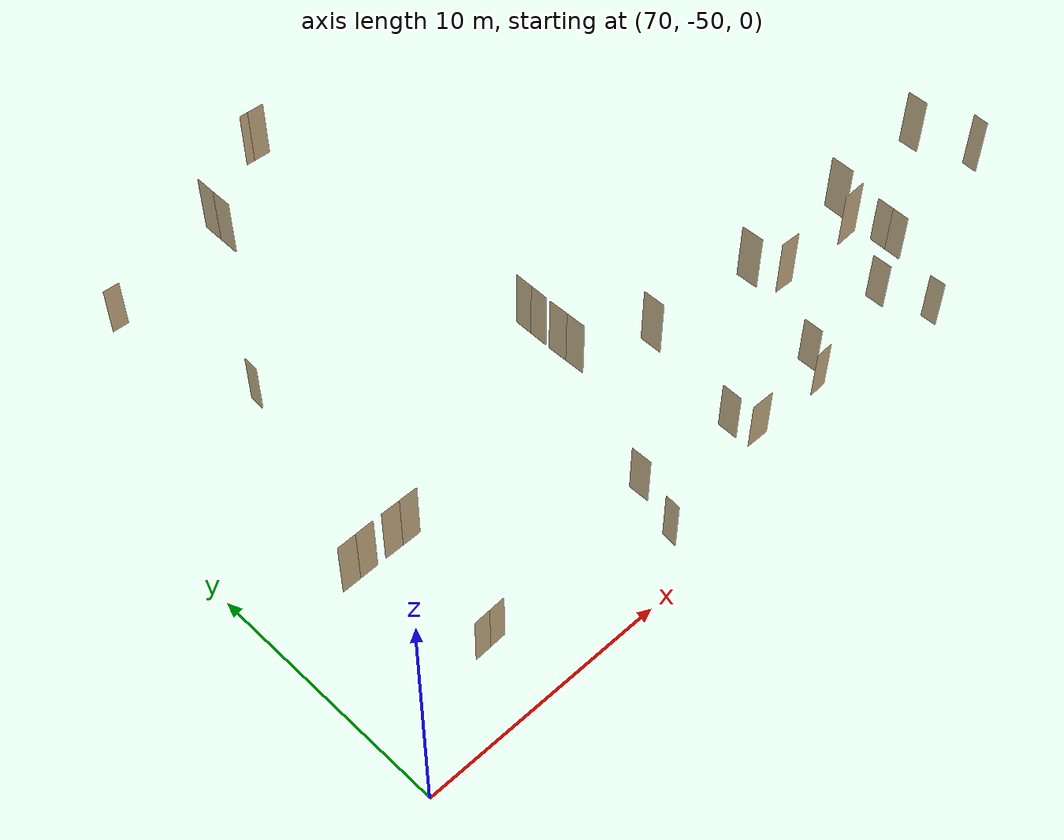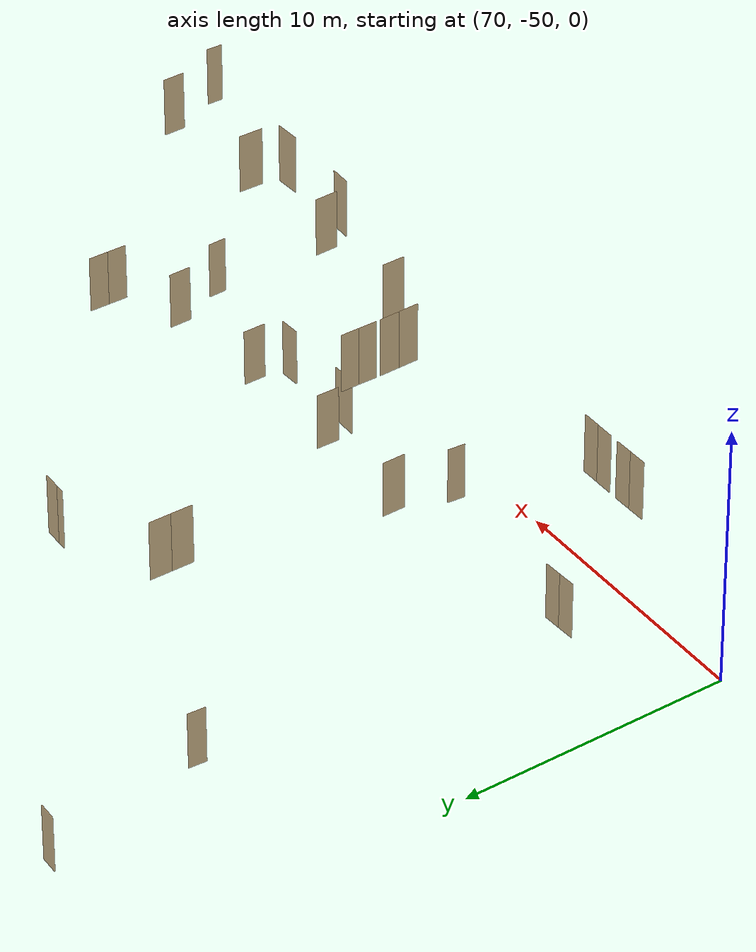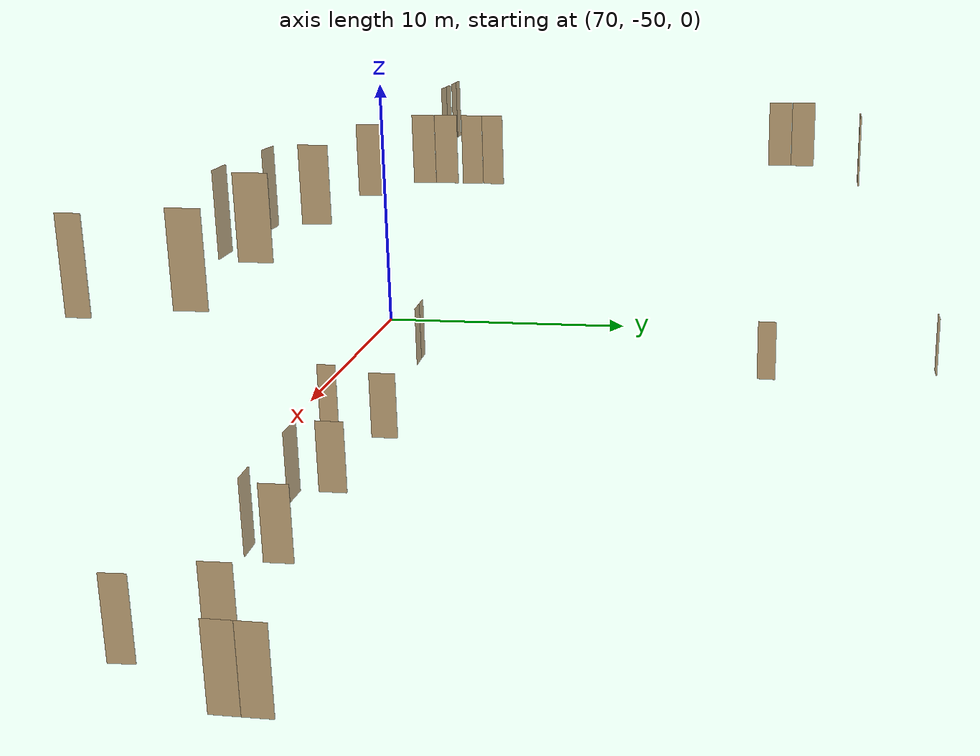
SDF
<sdf version="1.7">
 <world name="sim_world">
  <model name="TD0004SD">
   <pose>74.79835750045166 -27.734196090156722 0.0 0 0 3.0880747045317474</pose>
   <link name="right">
    <pose>0 0 1.11 0 0 0</pose>
    <visual name="right_visual">
     <geometry><box><size>0.680225894375982 0.03 2.2</size></box></geometry>
     <material>
      <ambient>0.5 0.25 0 0.6</ambient>
      <diffuse>0.5 0.25 0 0.6</diffuse>
      <pbr><metal><metalness>0.0</metalness></metal></pbr>
     </material>
    </visual>
    <collision name="right_collision">
     <geometry><box><size>0.680225894375982 0.03 2.2</size></box></geometry>
     <surface><contact><collide_bitmask>0x02</collide_bitmask></contact></surface>
    </collision>
    <inertial>
     <mass>50.0</mass>
     <inertia><ixx>20.17041666666667</ixx><iyy>22.09461361408169</iyy><izz>1.9316969474150196</izz></inertia>
    </inertial>
   </link>
   <joint name="right_joint" type="revolute">
    <parent>world</parent>
    <child>right</child>
    <axis><xyz>0 0 1</xyz><limit><lower>0</lower><upper>1.57</upper></limit></axis>
    <pose>0.345112947187991 0 0 0 0 0</pose>
   </joint>
   <plugin name="register_component" filename="libregister_component.so">
    <component name="Door">
     <v_max_door>0.5</v_max_door>
     <a_max_door>0.3</a_max_door>
     <a_nom_door>0.15</a_nom_door>
     <dx_min_door>0.01</dx_min_door>
     <f_max_door>500.0</f_max_door>
     <ros_interface>true</ros_interface>
     <door name="TD0004SD" type="SwingDoor" left_joint_name="empty_joint" right_joint_name="right_joint"/>
    </component>
   </plugin>
  </model>
  <model name="TD0003SC">
   <pose>76.13918153391711 -34.07165654204597 0.0 0 0 -1.631321297984006</pose>
   <link name="right">
    <pose>0 0 1.11 0 0 0</pose>
    <visual name="right_visual">
     <geometry><box><size>0.6642221204166918 0.03 2.2</size></box></geometry>
     <material>
      <ambient>0.5 0.25 0 0.6</ambient>
      <diffuse>0.5 0.25 0 0.6</diffuse>
      <pbr><metal><metalness>0.0</metalness></metal></pbr>
     </material>
    </visual>
    <collision name="right_collision">
     <geometry><box><size>0.6642221204166918 0.03 2.2</size></box></geometry>
     <surface><contact><collide_bitmask>0x02</collide_bitmask></contact></surface>
    </collision>
    <inertial>
     <mass>50.0</mass>
     <inertia><ixx>20.17041666666667</ixx><iyy>22.004962605211865</iyy><izz>1.8420459385451928</izz></inertia>
    </inertial>
   </link>
   <joint name="right_joint" type="revolute">
    <parent>world</parent>
    <child>right</child>
    <axis><xyz>0 0 -1</xyz><limit><lower>0</lower><upper>1.57</upper></limit></axis>
    <pose>0.3371110602083459 0 0 0 0 0</pose>
   </joint>
   <plugin name="register_component" filename="libregister_component.so">
    <component name="Door">
     <v_max_door>0.5</v_max_door>
     <a_max_door>0.3</a_max_door>
     <a_nom_door>0.15</a_nom_door>
     <dx_min_door>0.01</dx_min_door>
     <f_max_door>500.0</f_max_door>
     <ros_interface>true</ros_interface>
     <door name="TD0003SC" type="SwingDoor" left_joint_name="empty_joint" right_joint_name="right_joint"/>
    </component>
   </plugin>
  </model>
  <model name="TD0001EC2">
   <pose>75.12317994179705 -47.33942553554783 0.0 0 0 0.04271923748868774</pose>
   <link name="right">
    <pose>0.3341276760392261 0 1.11 0 0 0</pose>
    <visual name="right_visual">
     <geometry><box><size>0.6582553520784522 0.03 2.2</size></box></geometry>
     <material>
      <ambient>0.5 0.25 0 0.6</ambient>
      <diffuse>0.5 0.25 0 0.6</diffuse>
      <pbr><metal><metalness>0.0</metalness></metal></pbr>
     </material>
    </visual>
    <collision name="right_collision">
     <geometry><box><size>0.6582553520784522 0.03 2.2</size></box></geometry>
     <surface><contact><collide_bitmask>0x02</collide_bitmask></contact></surface>
    </collision>
    <inertial>
     <mass>50.0</mass>
     <inertia><ixx>20.17041666666667</ixx><iyy>21.972083785583035</iyy><izz>1.809167118916363</izz></inertia>
    </inertial>
   </link>
   <joint name="right_joint" type="revolute">
    <parent>world</parent>
    <child>right</child>
    <axis><xyz>0 0 -1</xyz><limit><lower>0</lower><upper>1.57</upper></limit></axis>
    <pose>0.3341276760392261 0 0 0 0 0</pose>
   </joint>
   <link name="left">
    <pose>-0.3341276760392261 0 1.11 0 0 0</pose>
    <visual name="left_visual">
     <geometry><box><size>0.6582553520784522 0.03 2.2</size></box></geometry>
     <material>
      <ambient>0.5 0.25 0 0.6</ambient>
      <diffuse>0.5 0.25 0 0.6</diffuse>
      <pbr><metal><metalness>0.0</metalness></metal></pbr>
     </material>
    </visual>
    <collision name="left_collision">
     <geometry><box><size>0.6582553520784522 0.03 2.2</size></box></geometry>
     <surface><contact><collide_bitmask>0x02</collide_bitmask></contact></surface>
    </collision>
    <inertial>
     <mass>50.0</mass>
     <inertia><ixx>20.17041666666667</ixx><iyy>21.972083785583035</iyy><izz>1.809167118916363</izz></inertia>
    </inertial>
   </link>
   <joint name="left_joint" type="revolute">
    <parent>world</parent>
    <child>left</child>
    <axis><xyz>0 0 -1</xyz><limit><lower>-1.57</lower><upper>0</upper></limit></axis>
    <pose>-0.3341276760392261 0 0 0 0 0</pose>
   </joint>
   <plugin name="register_component" filename="libregister_component.so">
    <component name="Door">
     <v_max_door>0.5</v_max_door>
     <a_max_door>0.3</a_max_door>
     <a_nom_door>0.15</a_nom_door>
     <dx_min_door>0.01</dx_min_door>
     <f_max_door>500.0</f_max_door>
     <ros_interface>true</ros_interface>
     <door name="TD0001EC2" type="DoubleSwingDoor" left_joint_name="left_joint" right_joint_name="right_joint"/>
    </component>
   </plugin>
  </model>
  <model name="bano012">
   <pose>82.44700350917586 -48.49807562310532 0.0 0 0 1.470619011720645</pose>
   <link name="right">
    <pose>0 0 1.11 0 0 0</pose>
    <visual name="right_visual">
     <geometry><box><size>0.6442041280268124 0.03 2.2</size></box></geometry>
     <material>
      <ambient>0.5 0.25 0 0.6</ambient>
      <diffuse>0.5 0.25 0 0.6</diffuse>
      <pbr><metal><metalness>0.0</metalness></metal></pbr>
     </material>
    </visual>
    <collision name="right_collision">
     <geometry><box><size>0.6442041280268124 0.03 2.2</size></box></geometry>
     <surface><contact><collide_bitmask>0x02</collide_bitmask></contact></surface>
    </collision>
    <inertial>
     <mass>50.0</mass>
     <inertia><ixx>20.17041666666667</ixx><iyy>21.895828994028278</iyy><izz>1.732912327361607</izz></inertia>
    </inertial>
   </link>
   <joint name="right_joint" type="revolute">
    <parent>world</parent>
    <child>right</child>
    <axis><xyz>0 0 -1</xyz><limit><lower>0</lower><upper>1.57</upper></limit></axis>
    <pose>0.3271020640134062 0 0 0 0 0</pose>
   </joint>
   <plugin name="register_component" filename="libregister_component.so">
    <component name="Door">
     <v_max_door>0.5</v_max_door>
     <a_max_door>0.3</a_max_door>
     <a_nom_door>0.15</a_nom_door>
     <dx_min_door>0.01</dx_min_door>
     <f_max_door>500.0</f_max_door>
     <ros_interface>true</ros_interface>
     <door name="bano012" type="SwingDoor" left_joint_name="empty_joint" right_joint_name="right_joint"/>
    </component>
   </plugin>
  </model>
  <model name="bano011">
   <pose>83.10448165831423 -46.433011116580694 0.0 0 0 1.5813146373530425</pose>
   <link name="right">
    <pose>0 0 1.11 0 0 0</pose>
    <visual name="right_visual">
     <geometry><box><size>0.8585081539588288 0.03 2.2</size></box></geometry>
     <material>
      <ambient>0.5 0.25 0 0.6</ambient>
      <diffuse>0.5 0.25 0 0.6</diffuse>
      <pbr><metal><metalness>0.0</metalness></metal></pbr>
     </material>
    </visual>
    <collision name="right_collision">
     <geometry><box><size>0.8585081539588288 0.03 2.2</size></box></geometry>
     <surface><contact><collide_bitmask>0x02</collide_bitmask></contact></surface>
    </collision>
    <inertial>
     <mass>50.0</mass>
     <inertia><ixx>20.17041666666667</ixx><iyy>23.237651043390823</iyy><izz>3.074734376724151</izz></inertia>
    </inertial>
   </link>
   <joint name="right_joint" type="revolute">
    <parent>world</parent>
    <child>right</child>
    <axis><xyz>0 0 -1</xyz><limit><lower>0</lower><upper>1.57</upper></limit></axis>
    <pose>0.4342540769794144 0 0 0 0 0</pose>
   </joint>
   <plugin name="register_component" filename="libregister_component.so">
    <component name="Door">
     <v_max_door>0.5</v_max_door>
     <a_max_door>0.3</a_max_door>
     <a_nom_door>0.15</a_nom_door>
     <dx_min_door>0.01</dx_min_door>
     <f_max_door>500.0</f_max_door>
     <ros_interface>true</ros_interface>
     <door name="bano011" type="SwingDoor" left_joint_name="empty_joint" right_joint_name="right_joint"/>
    </component>
   </plugin>
  </model>
  <model name="TD0009CW">
   <pose>87.36086317499587 -46.727566624388615 0.0 0 0 1.548810095529099</pose>
   <link name="right">
    <pose>0 0 1.11 0 0 0</pose>
    <visual name="right_visual">
     <geometry><box><size>0.8506552947807262 0.03 2.2</size></box></geometry>
     <material>
      <ambient>0.5 0.25 0 0.6</ambient>
      <diffuse>0.5 0.25 0 0.6</diffuse>
      <pbr><metal><metalness>0.0</metalness></metal></pbr>
     </material>
    </visual>
    <collision name="right_collision">
     <geometry><box><size>0.8506552947807262 0.03 2.2</size></box></geometry>
     <surface><contact><collide_bitmask>0x02</collide_bitmask></contact></surface>
    </collision>
    <inertial>
     <mass>50.0</mass>
     <inertia><ixx>20.17041666666667</ixx><iyy>23.181726793910357</iyy><izz>3.0188101272436842</izz></inertia>
    </inertial>
   </link>
   <joint name="right_joint" type="revolute">
    <parent>world</parent>
    <child>right</child>
    <axis><xyz>0 0 -1</xyz><limit><lower>0</lower><upper>1.57</upper></limit></axis>
    <pose>0.4303276473903631 0 0 0 0 0</pose>
   </joint>
   <plugin name="register_component" filename="libregister_component.so">
    <component name="Door">
     <v_max_door>0.5</v_max_door>
     <a_max_door>0.3</a_max_door>
     <a_nom_door>0.15</a_nom_door>
     <dx_min_door>0.01</dx_min_door>
     <f_max_door>500.0</f_max_door>
     <ros_interface>true</ros_interface>
     <door name="TD0009CW" type="SwingDoor" left_joint_name="empty_joint" right_joint_name="right_joint"/>
    </component>
   </plugin>
  </model>
  <model name="bano015">
   <pose>87.85361827983951 -47.72009086205543 0.0 0 0 3.131120733187098</pose>
   <link name="right">
    <pose>0 0 1.11 0 0 0</pose>
    <visual name="right_visual">
     <geometry><box><size>0.9523774060063468 0.03 2.2</size></box></geometry>
     <material>
      <ambient>0.5 0.25 0 0.6</ambient>
      <diffuse>0.5 0.25 0 0.6</diffuse>
      <pbr><metal><metalness>0.0</metalness></metal></pbr>
     </material>
    </visual>
    <collision name="right_collision">
     <geometry><box><size>0.9523774060063468 0.03 2.2</size></box></geometry>
     <surface><contact><collide_bitmask>0x02</collide_bitmask></contact></surface>
    </collision>
    <inertial>
     <mass>50.0</mass>
     <inertia><ixx>20.17041666666667</ixx><iyy>23.945928014464076</iyy><izz>3.7830113477974083</izz></inertia>
    </inertial>
   </link>
   <joint name="right_joint" type="revolute">
    <parent>world</parent>
    <child>right</child>
    <axis><xyz>0 0 -1</xyz><limit><lower>0</lower><upper>1.57</upper></limit></axis>
    <pose>0.4811887030031734 0 0 0 0 0</pose>
   </joint>
   <plugin name="register_component" filename="libregister_component.so">
    <component name="Door">
     <v_max_door>0.5</v_max_door>
     <a_max_door>0.3</a_max_door>
     <a_nom_door>0.15</a_nom_door>
     <dx_min_door>0.01</dx_min_door>
     <f_max_door>500.0</f_max_door>
     <ros_interface>true</ros_interface>
     <door name="bano015" type="SwingDoor" left_joint_name="empty_joint" right_joint_name="right_joint"/>
    </component>
   </plugin>
  </model>
  <model name="bano016">
   <pose>91.10995652086022 -47.73456781580528 0.0 0 0 0.0493386622574908</pose>
   <link name="right">
    <pose>0 0 1.11 0 0 0</pose>
    <visual name="right_visual">
     <geometry><box><size>0.7568425849847848 0.03 2.2</size></box></geometry>
     <material>
      <ambient>0.5 0.25 0 0.6</ambient>
      <diffuse>0.5 0.25 0 0.6</diffuse>
      <pbr><metal><metalness>0.0</metalness></metal></pbr>
     </material>
    </visual>
    <collision name="right_collision">
     <geometry><box><size>0.7568425849847848 0.03 2.2</size></box></geometry>
     <surface><contact><collide_bitmask>0x02</collide_bitmask></contact></surface>
    </collision>
    <inertial>
     <mass>50.0</mass>
     <inertia><ixx>20.17041666666667</ixx><iyy>22.553377910193554</iyy><izz>2.3904612435268806</izz></inertia>
    </inertial>
   </link>
   <joint name="right_joint" type="revolute">
    <parent>world</parent>
    <child>right</child>
    <axis><xyz>0 0 1</xyz><limit><lower>0</lower><upper>1.57</upper></limit></axis>
    <pose>0.38342129249239243 0 0 0 0 0</pose>
   </joint>
   <plugin name="register_component" filename="libregister_component.so">
    <component name="Door">
     <v_max_door>0.5</v_max_door>
     <a_max_door>0.3</a_max_door>
     <a_nom_door>0.15</a_nom_door>
     <dx_min_door>0.01</dx_min_door>
     <f_max_door>500.0</f_max_door>
     <ros_interface>true</ros_interface>
     <door name="bano016" type="SwingDoor" left_joint_name="empty_joint" right_joint_name="right_joint"/>
    </component>
   </plugin>
  </model>
  <model name="TD0010CW">
   <pose>91.71982905929562 -46.703932155708635 0.0 0 0 1.5707963267948966</pose>
   <link name="right">
    <pose>0 0 1.11 0 0 0</pose>
    <visual name="right_visual">
     <geometry><box><size>0.8220769448283869 0.03 2.2</size></box></geometry>
     <material>
      <ambient>0.5 0.25 0 0.6</ambient>
      <diffuse>0.5 0.25 0 0.6</diffuse>
      <pbr><metal><metalness>0.0</metalness></metal></pbr>
     </material>
    </visual>
    <collision name="right_collision">
     <geometry><box><size>0.8220769448283869 0.03 2.2</size></box></geometry>
     <surface><contact><collide_bitmask>0x02</collide_bitmask></contact></surface>
    </collision>
    <inertial>
     <mass>50.0</mass>
     <inertia><ixx>20.17041666666667</ixx><iyy>22.9825437634099</iyy><izz>2.819627096743228</izz></inertia>
    </inertial>
   </link>
   <joint name="right_joint" type="revolute">
    <parent>world</parent>
    <child>right</child>
    <axis><xyz>0 0 1</xyz><limit><lower>0</lower><upper>1.57</upper></limit></axis>
    <pose>0.41603847241419345 0 0 0 0 0</pose>
   </joint>
   <plugin name="register_component" filename="libregister_component.so">
    <component name="Door">
     <v_max_door>0.5</v_max_door>
     <a_max_door>0.3</a_max_door>
     <a_nom_door>0.15</a_nom_door>
     <dx_min_door>0.01</dx_min_door>
     <f_max_door>500.0</f_max_door>
     <ros_interface>true</ros_interface>
     <door name="TD0010CW" type="SwingDoor" left_joint_name="empty_joint" right_joint_name="right_joint"/>
    </component>
   </plugin>
  </model>
  <model name="bano017">
   <pose>95.89357971515548 -46.43758987404577 0.0 0 0 1.5818987977262087</pose>
   <link name="right">
    <pose>0 0 1.11 0 0 0</pose>
    <visual name="right_visual">
     <geometry><box><size>0.8128130271172215 0.03 2.2</size></box></geometry>
     <material>
      <ambient>0.5 0.25 0 0.6</ambient>
      <diffuse>0.5 0.25 0 0.6</diffuse>
      <pbr><metal><metalness>0.0</metalness></metal></pbr>
     </material>
    </visual>
    <collision name="right_collision">
     <geometry><box><size>0.8128130271172215 0.03 2.2</size></box></geometry>
     <surface><contact><collide_bitmask>0x02</collide_bitmask></contact></surface>
    </collision>
    <inertial>
     <mass>50.0</mass>
     <inertia><ixx>20.17041666666667</ixx><iyy>22.919437571047762</iyy><izz>2.7565209043810874</izz></inertia>
    </inertial>
   </link>
   <joint name="right_joint" type="revolute">
    <parent>world</parent>
    <child>right</child>
    <axis><xyz>0 0 1</xyz><limit><lower>0</lower><upper>1.57</upper></limit></axis>
    <pose>0.41140651355861074 0 0 0 0 0</pose>
   </joint>
   <plugin name="register_component" filename="libregister_component.so">
    <component name="Door">
     <v_max_door>0.5</v_max_door>
     <a_max_door>0.3</a_max_door>
     <a_nom_door>0.15</a_nom_door>
     <dx_min_door>0.01</dx_min_door>
     <f_max_door>500.0</f_max_door>
     <ros_interface>true</ros_interface>
     <door name="bano017" type="SwingDoor" left_joint_name="empty_joint" right_joint_name="right_joint"/>
    </component>
   </plugin>
  </model>
  <model name="bano018">
   <pose>96.61255686161878 -48.44135738725127 0.0 0 0 1.5939053097456333</pose>
   <link name="right">
    <pose>0 0 1.11 0 0 0</pose>
    <visual name="right_visual">
     <geometry><box><size>0.6631448530400826 0.03 2.2</size></box></geometry>
     <material>
      <ambient>0.5 0.25 0 0.6</ambient>
      <diffuse>0.5 0.25 0 0.6</diffuse>
      <pbr><metal><metalness>0.0</metalness></metal></pbr>
     </material>
    </visual>
    <collision name="right_collision">
     <geometry><box><size>0.6631448530400826 0.03 2.2</size></box></geometry>
     <surface><contact><collide_bitmask>0x02</collide_bitmask></contact></surface>
    </collision>
    <inertial>
     <mass>50.0</mass>
     <inertia><ixx>20.17041666666667</ixx><iyy>21.999004567139806</iyy><izz>1.8360879004731367</izz></inertia>
    </inertial>
   </link>
   <joint name="right_joint" type="revolute">
    <parent>world</parent>
    <child>right</child>
    <axis><xyz>0 0 1</xyz><limit><lower>0</lower><upper>1.57</upper></limit></axis>
    <pose>0.3365724265200413 0 0 0 0 0</pose>
   </joint>
   <plugin name="register_component" filename="libregister_component.so">
    <component name="Door">
     <v_max_door>0.5</v_max_door>
     <a_max_door>0.3</a_max_door>
     <a_nom_door>0.15</a_nom_door>
     <dx_min_door>0.01</dx_min_door>
     <f_max_door>500.0</f_max_door>
     <ros_interface>true</ros_interface>
     <door name="bano018" type="SwingDoor" left_joint_name="empty_joint" right_joint_name="right_joint"/>
    </component>
   </plugin>
  </model>
  <model name="TD0014CP2">
   <pose>98.2577784869531 -45.01359630240969 0.0 0 0 1.54642404726844</pose>
   <link name="right">
    <pose>0.36471993718789486 0 1.11 0 0 0</pose>
    <visual name="right_visual">
     <geometry><box><size>0.7194398743757897 0.03 2.2</size></box></geometry>
     <material>
      <ambient>0.5 0.25 0 0.6</ambient>
      <diffuse>0.5 0.25 0 0.6</diffuse>
      <pbr><metal><metalness>0.0</metalness></metal></pbr>
     </material>
    </visual>
    <collision name="right_collision">
     <geometry><box><size>0.7194398743757897 0.03 2.2</size></box></geometry>
     <surface><contact><collide_bitmask>0x02</collide_bitmask></contact></surface>
    </collision>
    <inertial>
     <mass>50.0</mass>
     <inertia><ixx>20.17041666666667</ixx><iyy>22.32330722017439</iyy><izz>2.160390553507717</izz></inertia>
    </inertial>
   </link>
   <joint name="right_joint" type="revolute">
    <parent>world</parent>
    <child>right</child>
    <axis><xyz>0 0 -1</xyz><limit><lower>0</lower><upper>1.57</upper></limit></axis>
    <pose>0.36471993718789486 0 0 0 0 0</pose>
   </joint>
   <link name="left">
    <pose>-0.36471993718789486 0 1.11 0 0 0</pose>
    <visual name="left_visual">
     <geometry><box><size>0.7194398743757897 0.03 2.2</size></box></geometry>
     <material>
      <ambient>0.5 0.25 0 0.6</ambient>
      <diffuse>0.5 0.25 0 0.6</diffuse>
      <pbr><metal><metalness>0.0</metalness></metal></pbr>
     </material>
    </visual>
    <collision name="left_collision">
     <geometry><box><size>0.7194398743757897 0.03 2.2</size></box></geometry>
     <surface><contact><collide_bitmask>0x02</collide_bitmask></contact></surface>
    </collision>
    <inertial>
     <mass>50.0</mass>
     <inertia><ixx>20.17041666666667</ixx><iyy>22.32330722017439</iyy><izz>2.160390553507717</izz></inertia>
    </inertial>
   </link>
   <joint name="left_joint" type="revolute">
    <parent>world</parent>
    <child>left</child>
    <axis><xyz>0 0 -1</xyz><limit><lower>-1.57</lower><upper>0</upper></limit></axis>
    <pose>-0.36471993718789486 0 0 0 0 0</pose>
   </joint>
   <plugin name="register_component" filename="libregister_component.so">
    <component name="Door">
     <v_max_door>0.5</v_max_door>
     <a_max_door>0.3</a_max_door>
     <a_nom_door>0.15</a_nom_door>
     <dx_min_door>0.01</dx_min_door>
     <f_max_door>500.0</f_max_door>
     <ros_interface>true</ros_interface>
     <door name="TD0014CP2" type="DoubleSwingDoor" left_joint_name="left_joint" right_joint_name="right_joint"/>
    </component>
   </plugin>
  </model>
  <model name="TD0118CP2">
   <pose>72.41551607728127 -46.65071877677124 8.0 0 0 -0.0022488865674640916</pose>
   <link name="right">
    <pose>0.3351267501694839 0 1.11 0 0 0</pose>
    <visual name="right_visual">
     <geometry><box><size>0.6602535003389678 0.03 2.2</size></box></geometry>
     <material>
      <ambient>0.5 0.25 0 0.6</ambient>
      <diffuse>0.5 0.25 0 0.6</diffuse>
      <pbr><metal><metalness>0.0</metalness></metal></pbr>
     </material>
    </visual>
    <collision name="right_collision">
     <geometry><box><size>0.6602535003389678 0.03 2.2</size></box></geometry>
     <surface><contact><collide_bitmask>0x02</collide_bitmask></contact></surface>
    </collision>
    <inertial>
     <mass>50.0</mass>
     <inertia><ixx>20.17041666666667</ixx><iyy>21.983061186291085</iyy><izz>1.8201445196244141</izz></inertia>
    </inertial>
   </link>
   <joint name="right_joint" type="revolute">
    <parent>world</parent>
    <child>right</child>
    <axis><xyz>0 0 -1</xyz><limit><lower>0</lower><upper>1.57</upper></limit></axis>
    <pose>0.3351267501694839 0 0 0 0 0</pose>
   </joint>
   <link name="left">
    <pose>-0.3351267501694839 0 1.11 0 0 0</pose>
    <visual name="left_visual">
     <geometry><box><size>0.6602535003389678 0.03 2.2</size></box></geometry>
     <material>
      <ambient>0.5 0.25 0 0.6</ambient>
      <diffuse>0.5 0.25 0 0.6</diffuse>
      <pbr><metal><metalness>0.0</metalness></metal></pbr>
     </material>
    </visual>
    <collision name="left_collision">
     <geometry><box><size>0.6602535003389678 0.03 2.2</size></box></geometry>
     <surface><contact><collide_bitmask>0x02</collide_bitmask></contact></surface>
    </collision>
    <inertial>
     <mass>50.0</mass>
     <inertia><ixx>20.17041666666667</ixx><iyy>21.983061186291085</iyy><izz>1.8201445196244141</izz></inertia>
    </inertial>
   </link>
   <joint name="left_joint" type="revolute">
    <parent>world</parent>
    <child>left</child>
    <axis><xyz>0 0 -1</xyz><limit><lower>-1.57</lower><upper>0</upper></limit></axis>
    <pose>-0.3351267501694839 0 0 0 0 0</pose>
   </joint>
   <plugin name="register_component" filename="libregister_component.so">
    <component name="Door">
     <v_max_door>0.5</v_max_door>
     <a_max_door>0.3</a_max_door>
     <a_nom_door>0.15</a_nom_door>
     <dx_min_door>0.01</dx_min_door>
     <f_max_door>500.0</f_max_door>
     <ros_interface>true</ros_interface>
     <door name="TD0118CP2" type="DoubleSwingDoor" left_joint_name="left_joint" right_joint_name="right_joint"/>
    </component>
   </plugin>
  </model>
  <model name="TD0118CP1">
   <pose>70.76829959604194 -46.6575118798179 8.0 0 0 0.017164137838007427</pose>
   <link name="right">
    <pose>0.33436032065809285 0 1.11 0 0 0</pose>
    <visual name="right_visual">
     <geometry><box><size>0.6587206413161857 0.03 2.2</size></box></geometry>
     <material>
      <ambient>0.5 0.25 0 0.6</ambient>
      <diffuse>0.5 0.25 0 0.6</diffuse>
      <pbr><metal><metalness>0.0</metalness></metal></pbr>
     </material>
    </visual>
    <collision name="right_collision">
     <geometry><box><size>0.6587206413161857 0.03 2.2</size></box></geometry>
     <surface><contact><collide_bitmask>0x02</collide_bitmask></contact></surface>
    </collision>
    <inertial>
     <mass>50.0</mass>
     <inertia><ixx>20.17041666666667</ixx><iyy>21.974637013733368</iyy><izz>1.8117203470666958</izz></inertia>
    </inertial>
   </link>
   <joint name="right_joint" type="revolute">
    <parent>world</parent>
    <child>right</child>
    <axis><xyz>0 0 -1</xyz><limit><lower>0</lower><upper>1.57</upper></limit></axis>
    <pose>0.33436032065809285 0 0 0 0 0</pose>
   </joint>
   <link name="left">
    <pose>-0.33436032065809285 0 1.11 0 0 0</pose>
    <visual name="left_visual">
     <geometry><box><size>0.6587206413161857 0.03 2.2</size></box></geometry>
     <material>
      <ambient>0.5 0.25 0 0.6</ambient>
      <diffuse>0.5 0.25 0 0.6</diffuse>
      <pbr><metal><metalness>0.0</metalness></metal></pbr>
     </material>
    </visual>
    <collision name="left_collision">
     <geometry><box><size>0.6587206413161857 0.03 2.2</size></box></geometry>
     <surface><contact><collide_bitmask>0x02</collide_bitmask></contact></surface>
    </collision>
    <inertial>
     <mass>50.0</mass>
     <inertia><ixx>20.17041666666667</ixx><iyy>21.974637013733368</iyy><izz>1.8117203470666958</izz></inertia>
    </inertial>
   </link>
   <joint name="left_joint" type="revolute">
    <parent>world</parent>
    <child>left</child>
    <axis><xyz>0 0 -1</xyz><limit><lower>-1.57</lower><upper>0</upper></limit></axis>
    <pose>-0.33436032065809285 0 0 0 0 0</pose>
   </joint>
   <plugin name="register_component" filename="libregister_component.so">
    <component name="Door">
     <v_max_door>0.5</v_max_door>
     <a_max_door>0.3</a_max_door>
     <a_nom_door>0.15</a_nom_door>
     <dx_min_door>0.01</dx_min_door>
     <f_max_door>500.0</f_max_door>
     <ros_interface>true</ros_interface>
     <door name="TD0118CP1" type="DoubleSwingDoor" left_joint_name="left_joint" right_joint_name="right_joint"/>
    </component>
   </plugin>
  </model>
  <model name="TD0112FR">
   <pose>76.27606314217377 -33.41932435095574 8.0 0 0 -1.5805137048583946</pose>
   <link name="right">
    <pose>0.3946552893605957 0 1.11 0 0 0</pose>
    <visual name="right_visual">
     <geometry><box><size>0.7793105787211914 0.03 2.2</size></box></geometry>
     <material>
      <ambient>0.5 0.25 0 0.6</ambient>
      <diffuse>0.5 0.25 0 0.6</diffuse>
      <pbr><metal><metalness>0.0</metalness></metal></pbr>
     </material>
    </visual>
    <collision name="right_collision">
     <geometry><box><size>0.7793105787211914 0.03 2.2</size></box></geometry>
     <surface><contact><collide_bitmask>0x02</collide_bitmask></contact></surface>
    </collision>
    <inertial>
     <mass>50.0</mass>
     <inertia><ixx>20.17041666666667</ixx><iyy>22.697187408778166</iyy><izz>2.534270742111493</izz></inertia>
    </inertial>
   </link>
   <joint name="right_joint" type="revolute">
    <parent>world</parent>
    <child>right</child>
    <axis><xyz>0 0 -1</xyz><limit><lower>0</lower><upper>1.57</upper></limit></axis>
    <pose>0.3946552893605957 0 0 0 0 0</pose>
   </joint>
   <link name="left">
    <pose>-0.3946552893605957 0 1.11 0 0 0</pose>
    <visual name="left_visual">
     <geometry><box><size>0.7793105787211914 0.03 2.2</size></box></geometry>
     <material>
      <ambient>0.5 0.25 0 0.6</ambient>
      <diffuse>0.5 0.25 0 0.6</diffuse>
      <pbr><metal><metalness>0.0</metalness></metal></pbr>
     </material>
    </visual>
    <collision name="left_collision">
     <geometry><box><size>0.7793105787211914 0.03 2.2</size></box></geometry>
     <surface><contact><collide_bitmask>0x02</collide_bitmask></contact></surface>
    </collision>
    <inertial>
     <mass>50.0</mass>
     <inertia><ixx>20.17041666666667</ixx><iyy>22.697187408778166</iyy><izz>2.534270742111493</izz></inertia>
    </inertial>
   </link>
   <joint name="left_joint" type="revolute">
    <parent>world</parent>
    <child>left</child>
    <axis><xyz>0 0 -1</xyz><limit><lower>-1.57</lower><upper>0</upper></limit></axis>
    <pose>-0.3946552893605957 0 0 0 0 0</pose>
   </joint>
   <plugin name="register_component" filename="libregister_component.so">
    <component name="Door">
     <v_max_door>0.5</v_max_door>
     <a_max_door>0.3</a_max_door>
     <a_nom_door>0.15</a_nom_door>
     <dx_min_door>0.01</dx_min_door>
     <f_max_door>500.0</f_max_door>
     <ros_interface>true</ros_interface>
     <door name="TD0112FR" type="DoubleSwingDoor" left_joint_name="left_joint" right_joint_name="right_joint"/>
    </component>
   </plugin>
  </model>
  <model name="TD0125DP">
   <pose>79.55417862068859 -31.34204735176244 8.0 0 0 3.093300224154347</pose>
   <link name="right">
    <pose>0.31686954406185663 0 1.11 0 0 0</pose>
    <visual name="right_visual">
     <geometry><box><size>0.3068695440618566 0.03 2.2</size></box></geometry>
     <material>
      <ambient>0.5 0.25 0 0.6</ambient>
      <diffuse>0.5 0.25 0 0.6</diffuse>
      <pbr><metal><metalness>0.0</metalness></metal></pbr>
     </material>
    </visual>
    <collision name="right_collision">
     <geometry><box><size>0.3068695440618566 0.03 2.2</size></box></geometry>
     <surface><contact><collide_bitmask>0x02</collide_bitmask></contact></surface>
    </collision>
    <inertial>
     <mass>50.0</mass>
     <inertia><ixx>20.17041666666667</ixx><iyy>20.559037154469717</iyy><izz>0.39612048780304904</izz></inertia>
    </inertial>
   </link>
   <joint name="right_joint" type="revolute">
    <parent>world</parent>
    <child>right</child>
    <axis><xyz>0 0 -1</xyz><limit><lower>0</lower><upper>1.57</upper></limit></axis>
    <pose>0.15843477203092832 0 0 0 0 0</pose>
   </joint>
   <link name="left">
    <pose>-0.15843477203092832 0 1.11 0 0 0</pose>
    <visual name="left_visual">
     <geometry><box><size>0.6237390881237133 0.03 2.2</size></box></geometry>
     <material>
      <ambient>0.5 0.25 0 0.6</ambient>
      <diffuse>0.5 0.25 0 0.6</diffuse>
      <pbr><metal><metalness>0.0</metalness></metal></pbr>
     </material>
    </visual>
    <collision name="left_collision">
     <geometry><box><size>0.6237390881237133 0.03 2.2</size></box></geometry>
     <surface><contact><collide_bitmask>0x02</collide_bitmask></contact></surface>
    </collision>
    <inertial>
     <mass>50.0</mass>
     <inertia><ixx>20.17041666666667</ixx><iyy>21.787710208555843</iyy><izz>1.6247935418891724</izz></inertia>
    </inertial>
   </link>
   <joint name="left_joint" type="revolute">
    <parent>world</parent>
    <child>left</child>
    <axis><xyz>0 0 -1</xyz><limit><lower>-1.57</lower><upper>0</upper></limit></axis>
    <pose>-0.31686954406185663 0 0 0 0 0</pose>
   </joint>
   <plugin name="register_component" filename="libregister_component.so">
    <component name="Door">
     <v_max_door>0.5</v_max_door>
     <a_max_door>0.3</a_max_door>
     <a_nom_door>0.15</a_nom_door>
     <dx_min_door>0.01</dx_min_door>
     <f_max_door>500.0</f_max_door>
     <ros_interface>true</ros_interface>
     <door name="TD0125DP" type="DoubleSwingDoor" left_joint_name="left_joint" right_joint_name="right_joint"/>
    </component>
   </plugin>
  </model>
  <model name="bano11">
   <pose>83.12115098966026 -46.42747207679933 8.0 0 0 1.5739918915008537</pose>
   <link name="right">
    <pose>0 0 1.11 0 0 0</pose>
    <visual name="right_visual">
     <geometry><box><size>0.8085229082769446 0.03 2.2</size></box></geometry>
     <material>
      <ambient>0.5 0.25 0 0.6</ambient>
      <diffuse>0.5 0.25 0 0.6</diffuse>
      <pbr><metal><metalness>0.0</metalness></metal></pbr>
     </material>
    </visual>
    <collision name="right_collision">
     <geometry><box><size>0.8085229082769446 0.03 2.2</size></box></geometry>
     <surface><contact><collide_bitmask>0x02</collide_bitmask></contact></surface>
    </collision>
    <inertial>
     <mass>50.0</mass>
     <inertia><ixx>20.17041666666667</ixx><iyy>22.890455388369208</iyy><izz>2.727538721702536</izz></inertia>
    </inertial>
   </link>
   <joint name="right_joint" type="revolute">
    <parent>world</parent>
    <child>right</child>
    <axis><xyz>0 0 -1</xyz><limit><lower>0</lower><upper>1.57</upper></limit></axis>
    <pose>0.4092614541384723 0 0 0 0 0</pose>
   </joint>
   <plugin name="register_component" filename="libregister_component.so">
    <component name="Door">
     <v_max_door>0.5</v_max_door>
     <a_max_door>0.3</a_max_door>
     <a_nom_door>0.15</a_nom_door>
     <dx_min_door>0.01</dx_min_door>
     <f_max_door>500.0</f_max_door>
     <ros_interface>true</ros_interface>
     <door name="bano11" type="SwingDoor" left_joint_name="empty_joint" right_joint_name="right_joint"/>
    </component>
   </plugin>
  </model>
  <model name="TD0116CW">
   <pose>87.33556820432368 -46.71327545660678 8.0 0 0 1.5897047612231876</pose>
   <link name="right">
    <pose>0 0 1.11 0 0 0</pose>
    <visual name="right_visual">
     <geometry><box><size>0.8193714331441315 0.03 2.2</size></box></geometry>
     <material>
      <ambient>0.5 0.25 0 0.6</ambient>
      <diffuse>0.5 0.25 0 0.6</diffuse>
      <pbr><metal><metalness>0.0</metalness></metal></pbr>
     </material>
    </visual>
    <collision name="right_collision">
     <geometry><box><size>0.8193714331441315 0.03 2.2</size></box></geometry>
     <surface><contact><collide_bitmask>0x02</collide_bitmask></contact></surface>
    </collision>
    <inertial>
     <mass>50.0</mass>
     <inertia><ixx>20.17041666666667</ixx><iyy>22.964039772719456</iyy><izz>2.8011231060527835</izz></inertia>
    </inertial>
   </link>
   <joint name="right_joint" type="revolute">
    <parent>world</parent>
    <child>right</child>
    <axis><xyz>0 0 -1</xyz><limit><lower>0</lower><upper>1.57</upper></limit></axis>
    <pose>0.41468571657206577 0 0 0 0 0</pose>
   </joint>
   <plugin name="register_component" filename="libregister_component.so">
    <component name="Door">
     <v_max_door>0.5</v_max_door>
     <a_max_door>0.3</a_max_door>
     <a_nom_door>0.15</a_nom_door>
     <dx_min_door>0.01</dx_min_door>
     <f_max_door>500.0</f_max_door>
     <ros_interface>true</ros_interface>
     <door name="TD0116CW" type="SwingDoor" left_joint_name="empty_joint" right_joint_name="right_joint"/>
    </component>
   </plugin>
  </model>
  <model name="bano15">
   <pose>87.99969229539565 -47.717978297521626 8.0 0 0 3.1074870969399293</pose>
   <link name="right">
    <pose>0 0 1.11 0 0 0</pose>
    <visual name="right_visual">
     <geometry><box><size>0.727989818265767 0.03 2.2</size></box></geometry>
     <material>
      <ambient>0.5 0.25 0 0.6</ambient>
      <diffuse>0.5 0.25 0 0.6</diffuse>
      <pbr><metal><metalness>0.0</metalness></metal></pbr>
     </material>
    </visual>
    <collision name="right_collision">
     <geometry><box><size>0.727989818265767 0.03 2.2</size></box></geometry>
     <surface><contact><collide_bitmask>0x02</collide_bitmask></contact></surface>
    </collision>
    <inertial>
     <mass>50.0</mass>
     <inertia><ixx>20.17041666666667</ixx><iyy>22.374871564577607</iyy><izz>2.211954897910936</izz></inertia>
    </inertial>
   </link>
   <joint name="right_joint" type="revolute">
    <parent>world</parent>
    <child>right</child>
    <axis><xyz>0 0 -1</xyz><limit><lower>0</lower><upper>1.57</upper></limit></axis>
    <pose>0.3689949091328835 0 0 0 0 0</pose>
   </joint>
   <plugin name="register_component" filename="libregister_component.so">
    <component name="Door">
     <v_max_door>0.5</v_max_door>
     <a_max_door>0.3</a_max_door>
     <a_nom_door>0.15</a_nom_door>
     <dx_min_door>0.01</dx_min_door>
     <f_max_door>500.0</f_max_door>
     <ros_interface>true</ros_interface>
     <door name="bano15" type="SwingDoor" left_joint_name="empty_joint" right_joint_name="right_joint"/>
    </component>
   </plugin>
  </model>
  <model name="bano16">
   <pose>91.1009032946051 -47.73355049538572 8.0 0 0 0.04892582185563511</pose>
   <link name="right">
    <pose>0 0 1.11 0 0 0</pose>
    <visual name="right_visual">
     <geometry><box><size>0.8818100781607421 0.03 2.2</size></box></geometry>
     <material>
      <ambient>0.5 0.25 0 0.6</ambient>
      <diffuse>0.5 0.25 0 0.6</diffuse>
      <pbr><metal><metalness>0.0</metalness></metal></pbr>
     </material>
    </visual>
    <collision name="right_collision">
     <geometry><box><size>0.8818100781607421 0.03 2.2</size></box></geometry>
     <surface><contact><collide_bitmask>0x02</collide_bitmask></contact></surface>
    </collision>
    <inertial>
     <mass>50.0</mass>
     <inertia><ixx>20.17041666666667</ixx><iyy>23.406620891441065</iyy><izz>3.2437042247743926</izz></inertia>
    </inertial>
   </link>
   <joint name="right_joint" type="revolute">
    <parent>world</parent>
    <child>right</child>
    <axis><xyz>0 0 1</xyz><limit><lower>0</lower><upper>1.57</upper></limit></axis>
    <pose>0.44590503908037105 0 0 0 0 0</pose>
   </joint>
   <plugin name="register_component" filename="libregister_component.so">
    <component name="Door">
     <v_max_door>0.5</v_max_door>
     <a_max_door>0.3</a_max_door>
     <a_nom_door>0.15</a_nom_door>
     <dx_min_door>0.01</dx_min_door>
     <f_max_door>500.0</f_max_door>
     <ros_interface>true</ros_interface>
     <door name="bano16" type="SwingDoor" left_joint_name="empty_joint" right_joint_name="right_joint"/>
    </component>
   </plugin>
  </model>
  <model name="bano17">
   <pose>95.94125941713821 -46.42989011922741 8.0 0 0 1.5709753921216942</pose>
   <link name="right">
    <pose>0 0 1.11 0 0 0</pose>
    <visual name="right_visual">
     <geometry><box><size>0.7624598038857092 0.03 2.2</size></box></geometry>
     <material>
      <ambient>0.5 0.25 0 0.6</ambient>
      <diffuse>0.5 0.25 0 0.6</diffuse>
      <pbr><metal><metalness>0.0</metalness></metal></pbr>
     </material>
    </visual>
    <collision name="right_collision">
     <geometry><box><size>0.7624598038857092 0.03 2.2</size></box></geometry>
     <surface><contact><collide_bitmask>0x02</collide_bitmask></contact></surface>
    </collision>
    <inertial>
     <mass>50.0</mass>
     <inertia><ixx>20.17041666666667</ixx><iyy>22.588937302255978</iyy><izz>2.426020635589309</izz></inertia>
    </inertial>
   </link>
   <joint name="right_joint" type="revolute">
    <parent>world</parent>
    <child>right</child>
    <axis><xyz>0 0 1</xyz><limit><lower>0</lower><upper>1.57</upper></limit></axis>
    <pose>0.3862299019428546 0 0 0 0 0</pose>
   </joint>
   <plugin name="register_component" filename="libregister_component.so">
    <component name="Door">
     <v_max_door>0.5</v_max_door>
     <a_max_door>0.3</a_max_door>
     <a_nom_door>0.15</a_nom_door>
     <dx_min_door>0.01</dx_min_door>
     <f_max_door>500.0</f_max_door>
     <ros_interface>true</ros_interface>
     <door name="bano17" type="SwingDoor" left_joint_name="empty_joint" right_joint_name="right_joint"/>
    </component>
   </plugin>
  </model>
  <model name="bano18">
   <pose>96.63959571975191 -48.52446806274959 8.0 0 0 1.5228293427319184</pose>
   <link name="right">
    <pose>0 0 1.11 0 0 0</pose>
    <visual name="right_visual">
     <geometry><box><size>0.5608595809617218 0.03 2.2</size></box></geometry>
     <material>
      <ambient>0.5 0.25 0 0.6</ambient>
      <diffuse>0.5 0.25 0 0.6</diffuse>
      <pbr><metal><metalness>0.0</metalness></metal></pbr>
     </material>
    </visual>
    <collision name="right_collision">
     <geometry><box><size>0.5608595809617218 0.03 2.2</size></box></geometry>
     <surface><contact><collide_bitmask>0x02</collide_bitmask></contact></surface>
    </collision>
    <inertial>
     <mass>50.0</mass>
     <inertia><ixx>20.17041666666667</ixx><iyy>21.477347789818996</iyy><izz>1.314431123152326</izz></inertia>
    </inertial>
   </link>
   <joint name="right_joint" type="revolute">
    <parent>world</parent>
    <child>right</child>
    <axis><xyz>0 0 1</xyz><limit><lower>0</lower><upper>1.57</upper></limit></axis>
    <pose>0.2854297904808609 0 0 0 0 0</pose>
   </joint>
   <plugin name="register_component" filename="libregister_component.so">
    <component name="Door">
     <v_max_door>0.5</v_max_door>
     <a_max_door>0.3</a_max_door>
     <a_nom_door>0.15</a_nom_door>
     <dx_min_door>0.01</dx_min_door>
     <f_max_door>500.0</f_max_door>
     <ros_interface>true</ros_interface>
     <door name="bano18" type="SwingDoor" left_joint_name="empty_joint" right_joint_name="right_joint"/>
    </component>
   </plugin>
  </model>
  <model name="TD0117CW">
   <pose>91.73253180637943 -46.70548493211402 8.0 0 0 1.5422422993392775</pose>
   <link name="right">
    <pose>0 0 1.11 0 0 0</pose>
    <visual name="right_visual">
     <geometry><box><size>0.8791200049220861 0.03 2.2</size></box></geometry>
     <material>
      <ambient>0.5 0.25 0 0.6</ambient>
      <diffuse>0.5 0.25 0 0.6</diffuse>
      <pbr><metal><metalness>0.0</metalness></metal></pbr>
     </material>
    </visual>
    <collision name="right_collision">
     <geometry><box><size>0.8791200049220861 0.03 2.2</size></box></geometry>
     <surface><contact><collide_bitmask>0x02</collide_bitmask></contact></surface>
    </collision>
    <inertial>
     <mass>50.0</mass>
     <inertia><ixx>20.17041666666667</ixx><iyy>23.386883262725874</iyy><izz>3.223966596059203</izz></inertia>
    </inertial>
   </link>
   <joint name="right_joint" type="revolute">
    <parent>world</parent>
    <child>right</child>
    <axis><xyz>0 0 1</xyz><limit><lower>0</lower><upper>1.57</upper></limit></axis>
    <pose>0.44456000246104305 0 0 0 0 0</pose>
   </joint>
   <plugin name="register_component" filename="libregister_component.so">
    <component name="Door">
     <v_max_door>0.5</v_max_door>
     <a_max_door>0.3</a_max_door>
     <a_nom_door>0.15</a_nom_door>
     <dx_min_door>0.01</dx_min_door>
     <f_max_door>500.0</f_max_door>
     <ros_interface>true</ros_interface>
     <door name="TD0117CW" type="SwingDoor" left_joint_name="empty_joint" right_joint_name="right_joint"/>
    </component>
   </plugin>
  </model>
  <model name="TD0123CP1">
   <pose>80.76817690430725 -43.446210642965184 8.0 0 0 -1.5810030175274183</pose>
   <link name="right">
    <pose>0.33499792972939585 0 1.11 0 0 0</pose>
    <visual name="right_visual">
     <geometry><box><size>0.6599958594587917 0.03 2.2</size></box></geometry>
     <material>
      <ambient>0.5 0.25 0 0.6</ambient>
      <diffuse>0.5 0.25 0 0.6</diffuse>
      <pbr><metal><metalness>0.0</metalness></metal></pbr>
     </material>
    </visual>
    <collision name="right_collision">
     <geometry><box><size>0.6599958594587917 0.03 2.2</size></box></geometry>
     <surface><contact><collide_bitmask>0x02</collide_bitmask></contact></surface>
    </collision>
    <inertial>
     <mass>50.0</mass>
     <inertia><ixx>20.17041666666667</ixx><iyy>21.981643893761458</iyy><izz>1.818727227094788</izz></inertia>
    </inertial>
   </link>
   <joint name="right_joint" type="revolute">
    <parent>world</parent>
    <child>right</child>
    <axis><xyz>0 0 -1</xyz><limit><lower>0</lower><upper>1.57</upper></limit></axis>
    <pose>0.33499792972939585 0 0 0 0 0</pose>
   </joint>
   <link name="left">
    <pose>-0.33499792972939585 0 1.11 0 0 0</pose>
    <visual name="left_visual">
     <geometry><box><size>0.6599958594587917 0.03 2.2</size></box></geometry>
     <material>
      <ambient>0.5 0.25 0 0.6</ambient>
      <diffuse>0.5 0.25 0 0.6</diffuse>
      <pbr><metal><metalness>0.0</metalness></metal></pbr>
     </material>
    </visual>
    <collision name="left_collision">
     <geometry><box><size>0.6599958594587917 0.03 2.2</size></box></geometry>
     <surface><contact><collide_bitmask>0x02</collide_bitmask></contact></surface>
    </collision>
    <inertial>
     <mass>50.0</mass>
     <inertia><ixx>20.17041666666667</ixx><iyy>21.981643893761458</iyy><izz>1.818727227094788</izz></inertia>
    </inertial>
   </link>
   <joint name="left_joint" type="revolute">
    <parent>world</parent>
    <child>left</child>
    <axis><xyz>0 0 -1</xyz><limit><lower>-1.57</lower><upper>0</upper></limit></axis>
    <pose>-0.33499792972939585 0 0 0 0 0</pose>
   </joint>
   <plugin name="register_component" filename="libregister_component.so">
    <component name="Door">
     <v_max_door>0.5</v_max_door>
     <a_max_door>0.3</a_max_door>
     <a_nom_door>0.15</a_nom_door>
     <dx_min_door>0.01</dx_min_door>
     <f_max_door>500.0</f_max_door>
     <ros_interface>true</ros_interface>
     <door name="TD0123CP1" type="DoubleSwingDoor" left_joint_name="left_joint" right_joint_name="right_joint"/>
    </component>
   </plugin>
  </model>
  <model name="TD0123CP2">
   <pose>80.77027340353536 -45.0007592736398 8.0 0 0 -1.5535864209297303</pose>
   <link name="right">
    <pose>0.3664126367814453 0 1.11 0 0 0</pose>
    <visual name="right_visual">
     <geometry><box><size>0.7228252735628906 0.03 2.2</size></box></geometry>
     <material>
      <ambient>0.5 0.25 0 0.6</ambient>
      <diffuse>0.5 0.25 0 0.6</diffuse>
      <pbr><metal><metalness>0.0</metalness></metal></pbr>
     </material>
    </visual>
    <collision name="right_collision">
     <geometry><box><size>0.7228252735628906 0.03 2.2</size></box></geometry>
     <surface><contact><collide_bitmask>0x02</collide_bitmask></contact></surface>
    </collision>
    <inertial>
     <mass>50.0</mass>
     <inertia><ixx>20.17041666666667</ixx><iyy>22.34365156708862</iyy><izz>2.1807349004219487</izz></inertia>
    </inertial>
   </link>
   <joint name="right_joint" type="revolute">
    <parent>world</parent>
    <child>right</child>
    <axis><xyz>0 0 -1</xyz><limit><lower>0</lower><upper>1.57</upper></limit></axis>
    <pose>0.3664126367814453 0 0 0 0 0</pose>
   </joint>
   <link name="left">
    <pose>-0.3664126367814453 0 1.11 0 0 0</pose>
    <visual name="left_visual">
     <geometry><box><size>0.7228252735628906 0.03 2.2</size></box></geometry>
     <material>
      <ambient>0.5 0.25 0 0.6</ambient>
      <diffuse>0.5 0.25 0 0.6</diffuse>
      <pbr><metal><metalness>0.0</metalness></metal></pbr>
     </material>
    </visual>
    <collision name="left_collision">
     <geometry><box><size>0.7228252735628906 0.03 2.2</size></box></geometry>
     <surface><contact><collide_bitmask>0x02</collide_bitmask></contact></surface>
    </collision>
    <inertial>
     <mass>50.0</mass>
     <inertia><ixx>20.17041666666667</ixx><iyy>22.34365156708862</iyy><izz>2.1807349004219487</izz></inertia>
    </inertial>
   </link>
   <joint name="left_joint" type="revolute">
    <parent>world</parent>
    <child>left</child>
    <axis><xyz>0 0 -1</xyz><limit><lower>-1.57</lower><upper>0</upper></limit></axis>
    <pose>-0.3664126367814453 0 0 0 0 0</pose>
   </joint>
   <plugin name="register_component" filename="libregister_component.so">
    <component name="Door">
     <v_max_door>0.5</v_max_door>
     <a_max_door>0.3</a_max_door>
     <a_nom_door>0.15</a_nom_door>
     <dx_min_door>0.01</dx_min_door>
     <f_max_door>500.0</f_max_door>
     <ros_interface>true</ros_interface>
     <door name="TD0123CP2" type="DoubleSwingDoor" left_joint_name="left_joint" right_joint_name="right_joint"/>
    </component>
   </plugin>
  </model>
 </world>
</sdf>
